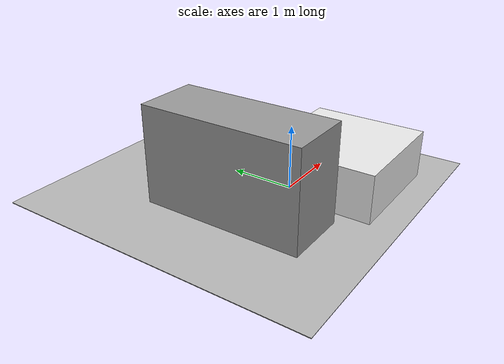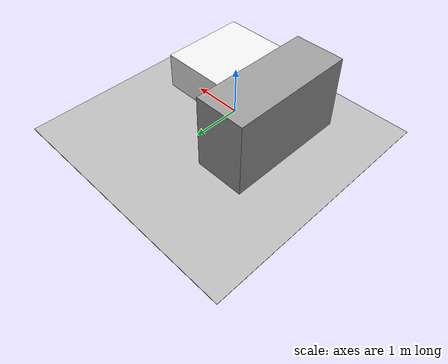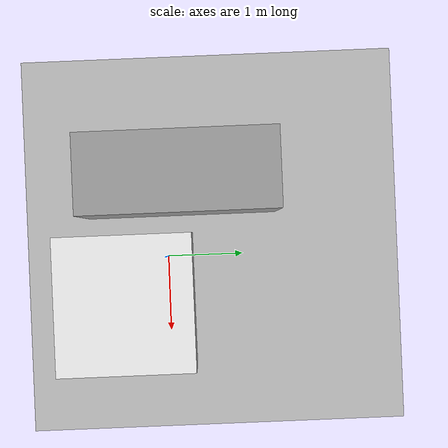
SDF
<sdf version="1.7">
  <world name="default">
    <model name="ground">
      <static>1</static>
      <link name="link">
        <pose>0 0 -0.005 0 -0 0</pose>
        <collision name="collision">
          <geometry>
            <box>
              <size>5 5 0.01</size>
            </box>
          </geometry>
          <max_contacts>10</max_contacts>
          <surface>
            <contact>
              <ode />
            </contact>
            <bounce />
            <friction>
              <torsional>
                <ode />
              </torsional>
              <ode />
            </friction>
          </surface>
        </collision>
        <visual name="visual">
          <geometry>
            <box>
              <size>5 5 0.01</size>
            </box>
          </geometry>
        </visual>
        <self_collide>0</self_collide>
        <enable_wind>0</enable_wind>
        <kinematic>0</kinematic>
      </link>
      <pose>-0.2 0.6 0 0 -0 0</pose>
    </model>
    <light name="lab_light" type="directional">
      <pose>0.86 1.96 2.5 -1.55 0 0</pose>
      <diffuse>0.8 0.8 0.8 1</diffuse>
      <specular>0.2 0.2 0.2 1</specular>
      <attenuation>
        <range>20</range>
        <constant>0.9</constant>
        <linear>0.01</linear>
        <quadratic>0.001</quadratic>
      </attenuation>
      <direction>0 0 -1</direction>
      <cast_shadows>1</cast_shadows>
      <spot>
        <inner_angle>0</inner_angle>
        <outer_angle>0</outer_angle>
        <falloff>0</falloff>
      </spot>
    </light>
    <physics type="ode">
      <ode>
        <solver>
          <type>quick</type>
          <iters>100</iters>
          <precon_iters>0</precon_iters>
          <sor>1</sor>
          <use_dynamic_moi_rescaling>0</use_dynamic_moi_rescaling>
        </solver>
        <constraints>
          <cfm>0</cfm>
          <erp>0.5</erp>
          <contact_max_correcting_vel>1000</contact_max_correcting_vel>
          <contact_surface_layer>0</contact_surface_layer>
        </constraints>
      </ode>
      <real_time_factor>1</real_time_factor>
      <max_step_size>0.001</max_step_size>
      <real_time_update_rate>1000</real_time_update_rate>
    </physics>
    <scene>
      <ambient>0.4 0.4 0.4 1</ambient>
      <background>0.7 0.7 1 1</background>
      <shadows>1</shadows>
    </scene>
    <gui fullscreen="0">
      <camera name="user_camera">
        <pose>1.20877 3.84227 3.42646 -0 0.587717 -1.48203</pose>
        <view_controller>orbit</view_controller>
        <projection_type>perspective</projection_type>
      </camera>
    </gui>
    <gravity>0 0 -9.81</gravity>
    <magnetic_field>6e-06 2.3e-05 -4.2e-05</magnetic_field>
    <atmosphere type="adiabatic" />
    <wind />
    <spherical_coordinates>
      <surface_model>EARTH_WGS84</surface_model>
      <latitude_deg>0</latitude_deg>
      <longitude_deg>0</longitude_deg>
      <elevation>0</elevation>
      <heading_deg>0</heading_deg>
    </spherical_coordinates>
    <model name="kit_backplane_and_human">
      <link name="link">
        <inertial>
          <mass>1</mass>
          <inertia>
            <ixx>0.166667</ixx>
            <ixy>0</ixy>
            <ixz>0</ixz>
            <iyy>0.166667</iyy>
            <iyz>0</iyz>
            <izz>0.166667</izz>
          </inertia>
          <pose>0 0 0 0 -0 0</pose>
        </inertial>
        <self_collide>0</self_collide>
        <enable_wind>0</enable_wind>
        <kinematic>0</kinematic>
        <pose>0 0 0 0 -0 0</pose>
        <gravity>1</gravity>
        <visual name="visual">
          <geometry>
            <box>
              <size>1 2.5 2</size>
            </box>
          </geometry>
          <material>
            <script>
              <name>Gazebo/Grey</name>
              <uri>file://media/materials/scripts/gazebo.material</uri>
            </script>
            <shader type="pixel">
              <normal_map>__default__</normal_map>
            </shader>
            <ambient>0.3 0.3 0.3 1</ambient>
            <diffuse>0.7 0.7 0.7 1</diffuse>
            <specular>0.01 0.01 0.01 1</specular>
            <emissive>0 0 0 1</emissive>
          </material>
          <pose>0 0 0 0 -0 0</pose>
          <transparency>0</transparency>
          <cast_shadows>1</cast_shadows>
        </visual>
        <collision name="collision">
          <laser_retro>0</laser_retro>
          <max_contacts>10</max_contacts>
          <pose>0 0 0 0 -0 0</pose>
          <geometry>
            <box>
              <size>1 2.5 2</size>
            </box>
          </geometry>
          <surface>
            <friction>
              <ode>
                <mu>1</mu>
                <mu2>1</mu2>
                <fdir1>0 0 0</fdir1>
                <slip1>0</slip1>
                <slip2>0</slip2>
              </ode>
              <torsional>
                <coefficient>1</coefficient>
                <patch_radius>0</patch_radius>
                <surface_radius>0</surface_radius>
                <use_patch_radius>1</use_patch_radius>
                <ode>
                  <slip>0</slip>
                </ode>
              </torsional>
            </friction>
            <bounce>
              <restitution_coefficient>0</restitution_coefficient>
              <threshold>1e+06</threshold>
            </bounce>
            <contact>
              <collide_without_contact>0</collide_without_contact>
              <collide_without_contact_bitmask>1</collide_without_contact_bitmask>
              <collide_bitmask>1</collide_bitmask>
              <ode>
                <soft_cfm>0</soft_cfm>
                <soft_erp>0.2</soft_erp>
                <kp>1e+13</kp>
                <kd>1</kd>
                <max_vel>0.01</max_vel>
                <min_depth>0</min_depth>
              </ode>
              <bullet>
                <split_impulse>1</split_impulse>
                <split_impulse_penetration_threshold>-0.01</split_impulse_penetration_threshold>
                <soft_cfm>0</soft_cfm>
                <soft_erp>0.2</soft_erp>
                <kp>1e+13</kp>
                <kd>1</kd>
              </bullet>
            </contact>
          </surface>
        </collision>
      </link>
      <static>1</static>
      <allow_auto_disable>1</allow_auto_disable>
      <pose>-1.04307 0.209398 0.514752 -4e-06 2e-06 0.000127</pose>
    </model>
    <model name="kit_table">
      <link name="link">
        <self_collide>0</self_collide>
        <enable_wind>0</enable_wind>
        <kinematic>0</kinematic>
        <pose>0 0 0 0 -0 0</pose>
        <gravity>1</gravity>
        <inertial>
          <mass>1</mass>
          <pose>0 0 0 0 -0 0</pose>
          <inertia>
            <ixx>1</ixx>
            <ixy>0</ixy>
            <ixz>0</ixz>
            <iyy>1</iyy>
            <iyz>0</iyz>
            <izz>1</izz>
          </inertia>
        </inertial>
        <visual name="visual_folding_table">
          <geometry>
            <box>
              <size>1.8 1.8 0.8221</size>
            </box>
          </geometry>
          <material>
            <script>
              <uri>file://media/materials/scripts/gazebo.material</uri>
              <name>Gazebo/White</name>
            </script>
            <shader type="pixel">
              <normal_map>__default__</normal_map>
            </shader>
            <ambient>1 1 1 1</ambient>
            <diffuse>1 1 1 1</diffuse>
            <specular>0 0 0 1</specular>
            <emissive>0 0 0 1</emissive>
          </material>
          <pose>0 0 0 0 -0 0</pose>
          <transparency>0</transparency>
          <cast_shadows>1</cast_shadows>
        </visual>
        <collision name="collision_folding_table">
          <laser_retro>0</laser_retro>
          <max_contacts>10</max_contacts>
          <pose>0 0 0 0 -0 0</pose>
          <geometry>
            <box>
              <size>1.8 1.8 0.8221</size>
            </box>
          </geometry>
          <surface>
            <friction>
              <ode>
                <mu>1</mu>
                <mu2>1</mu2>
                <fdir1>0 0 0</fdir1>
                <slip1>0</slip1>
                <slip2>0</slip2>
              </ode>
              <torsional>
                <coefficient>1</coefficient>
                <patch_radius>0</patch_radius>
                <surface_radius>0</surface_radius>
                <use_patch_radius>1</use_patch_radius>
                <ode>
                  <slip>0</slip>
                </ode>
              </torsional>
            </friction>
            <bounce>
              <restitution_coefficient>0</restitution_coefficient>
              <threshold>1e+06</threshold>
            </bounce>
            <contact>
              <collide_without_contact>0</collide_without_contact>
              <collide_without_contact_bitmask>1</collide_without_contact_bitmask>
              <collide_bitmask>1</collide_bitmask>
              <ode>
                <soft_cfm>0</soft_cfm>
                <soft_erp>0.2</soft_erp>
                <kp>1e+13</kp>
                <kd>1</kd>
                <max_vel>0.01</max_vel>
                <min_depth>0</min_depth>
              </ode>
              <bullet>
                <split_impulse>1</split_impulse>
                <split_impulse_penetration_threshold>-0.01</split_impulse_penetration_threshold>
                <soft_cfm>0</soft_cfm>
                <soft_erp>0.2</soft_erp>
                <kp>1e+13</kp>
                <kd>1</kd>
              </bullet>
            </contact>
          </surface>
        </collision>
      </link>
      <static>1</static>
      <allow_auto_disable>1</allow_auto_disable>
      <pose>0.595086 -0.565229 0.34 0 -0 0</pose>
    </model>
  </world>
</sdf>
